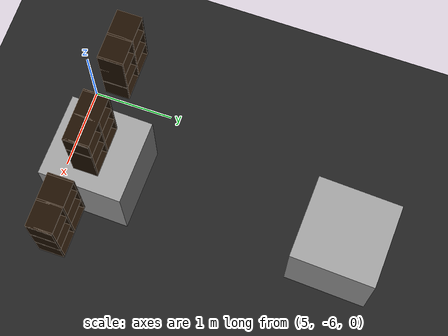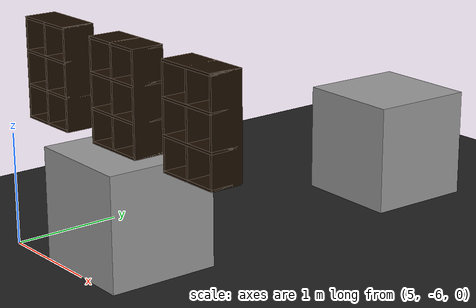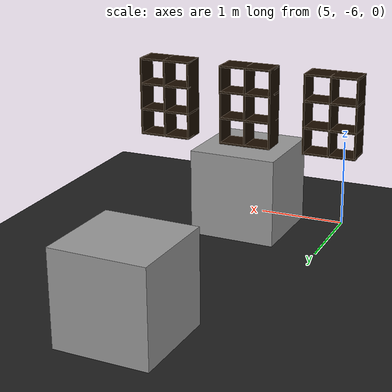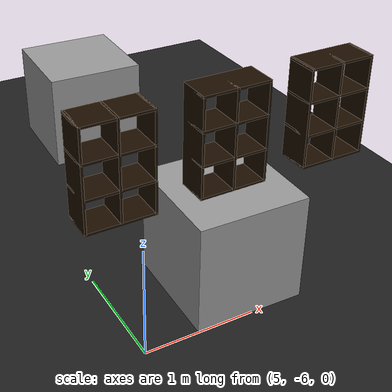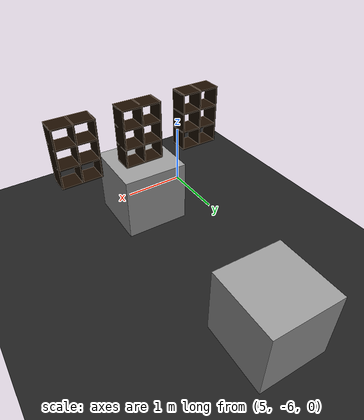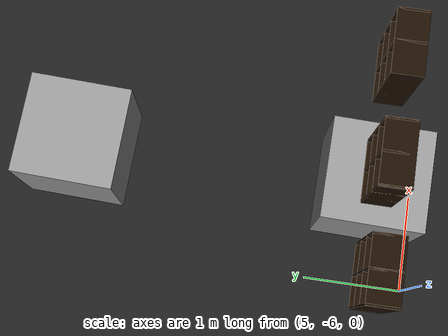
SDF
<sdf version="1.7">
 <world name="default">
  <model name="ground_plane">
   <static>1</static>
   <link name="link">
    <collision name="collision">
     <geometry><plane><normal>0 0 1</normal><size>100 100</size></plane></geometry>
     <surface><friction><ode><mu>100</mu><mu2>50</mu2></ode></friction></surface>
    </collision>
    <visual name="visual">
     <cast_shadows>0</cast_shadows>
     <geometry><plane><normal>0 0 1</normal><size>100 100</size></plane></geometry>
     <material>
      <script><uri>file://media/materials/scripts/gazebo.material</uri><name>Gazebo/BlackTransparent</name></script>
     </material>
    </visual>
   </link>
  </model>
  <model name="unit_box_27">
   <pose>5.99482 -2.50701 0.5 0 0 -0.035375</pose>
   <link name="link">
    <inertial>
     <mass>1</mass>
     <inertia>
      <ixx>0.166667</ixx>
      <ixy>0</ixy>
      <ixz>0</ixz>
      <iyy>0.166667</iyy>
      <iyz>0</iyz>
      <izz>0.166667</izz>
     </inertia>
    </inertial>
    <collision name="collision"><geometry><box><size>1 1 1</size></box></geometry></collision>
    <visual name="visual">
     <geometry><box><size>1 1 1</size></box></geometry>
     <material>
      <script><name>Gazebo/Grey</name><uri>file://media/materials/scripts/gazebo.material</uri></script>
     </material>
    </visual>
   </link>
  </model>
  <model name="unit_box_33">
   <pose>5.99752 -5.5015 0.5 0 0 -0.021423</pose>
   <link name="link">
    <inertial>
     <mass>1</mass>
     <inertia>
      <ixx>0.166667</ixx>
      <ixy>0</ixy>
      <ixz>0</ixz>
      <iyy>0.166667</iyy>
      <iyz>0</iyz>
      <izz>0.166667</izz>
     </inertia>
    </inertial>
    <collision name="collision"><geometry><box><size>1 1 1</size></box></geometry></collision>
    <visual name="visual">
     <geometry><box><size>1 1 1</size></box></geometry>
     <material>
      <script><name>Gazebo/Grey</name><uri>file://media/materials/scripts/gazebo.material</uri></script>
     </material>
    </visual>
   </link>
  </model>
  <model name="6_Cube_StorageE_clone_70">
   <link name="Wall_0">
    <pose>0 0 0.01 0 -0 0</pose>
    <inertial>
     <mass>1.6201</mass>
     <inertia><ixx>0.0119</ixx><iyy>0.0631</iyy><izz>0.0513</izz><ixy>0</ixy><ixz>0</ixz><iyz>0</iyz></inertia>
    </inertial>
    <collision name="Wall_0_Collision"><geometry><box><size>0.616 0.296 0.02</size></box></geometry></collision>
    <visual name="Wall_0_Visual">
     <geometry><box><size>0.616 0.296 0.02</size></box></geometry>
     <material>
      <script><uri>file://media/materials/scripts/gazebo.material</uri><name>Gazebo/Grey</name></script>
      <ambient>0.105882 0.0509804 0 1</ambient>
     </material>
    </visual>
   </link>
   <joint name="0_2" type="fixed">
    <pose>-0.308 0 0 0 -0 0</pose>
    <parent>Wall_2</parent>
    <child>Wall_0</child>
    <axis><xyz>1 0 0</xyz><limit><lower>-1e+16</lower><upper>1e+16</upper></limit></axis>
   </joint>
   <joint name="0_12" type="fixed">
    <parent>Wall_12</parent>
    <child>Wall_0</child>
    <axis><xyz>0 0 1</xyz><limit><lower>-1e+16</lower><upper>1e+16</upper></limit></axis>
   </joint>
   <joint name="0_4" type="fixed">
    <pose>0.308 0 0 0 -0 0</pose>
    <parent>Wall_4</parent>
    <child>Wall_0</child>
    <axis><xyz>1 0 0</xyz><limit><lower>-1e+16</lower><upper>1e+16</upper></limit></axis>
   </joint>
   <link name="Wall_10">
    <pose>0 0 0.61 0 -0 0</pose>
    <inertial>
     <mass>1.6201</mass>
     <inertia><ixx>0.0119</ixx><iyy>0.0631</iyy><izz>0.0513</izz><ixy>0</ixy><ixz>0</ixz><iyz>0</iyz></inertia>
    </inertial>
    <collision name="Wall_10_Collision"><geometry><box><size>0.616 0.296 0.02</size></box></geometry></collision>
    <visual name="Wall_10_Visual">
     <geometry><box><size>0.616 0.296 0.02</size></box></geometry>
     <material>
      <script><uri>file://media/materials/scripts/gazebo.material</uri><name>Gazebo/Grey</name></script>
      <ambient>0.105882 0.0509804 0 1</ambient>
     </material>
    </visual>
   </link>
   <joint name="10_2" type="fixed">
    <pose>-0.308 0 0 0 -0 0</pose>
    <parent>Wall_2</parent>
    <child>Wall_10</child>
    <axis><xyz>1 0 0</xyz><limit><lower>-1e+16</lower><upper>1e+16</upper></limit></axis>
   </joint>
   <joint name="10_12" type="fixed">
    <parent>Wall_12</parent>
    <child>Wall_10</child>
    <axis><xyz>0 0 1</xyz><limit><lower>-1e+16</lower><upper>1e+16</upper></limit></axis>
   </joint>
   <joint name="10_4" type="fixed">
    <pose>0.308 0 0 0 -0 0</pose>
    <parent>Wall_4</parent>
    <child>Wall_10</child>
    <axis><xyz>1 0 0</xyz><limit><lower>-1e+16</lower><upper>1e+16</upper></limit></axis>
   </joint>
   <link name="Wall_12">
    <pose>0 0 0.4575 0 -0 0</pose>
    <inertial>
     <mass>2.4065</mass>
     <inertia><ixx>0.0177</ixx><iyy>0.1855</iyy><izz>0.168</izz><ixy>0</ixy><ixz>0</ixz><iyz>0</iyz></inertia>
    </inertial>
    <collision name="Wall_12_Collision"><geometry><box><size>0.02 0.296 0.915</size></box></geometry></collision>
    <visual name="Wall_12_Visual">
     <geometry><box><size>0.02 0.296 0.915</size></box></geometry>
     <material>
      <script><uri>file://media/materials/scripts/gazebo.material</uri><name>Gazebo/Grey</name></script>
      <ambient>0.105882 0.0509804 0 1</ambient>
     </material>
    </visual>
   </link>
   <link name="Wall_2">
    <pose>-0.298 0 0.4575 0 -0 0</pose>
    <inertial>
     <mass>2.4065</mass>
     <inertia><ixx>0.0177</ixx><iyy>0.1855</iyy><izz>0.168</izz><ixy>0</ixy><ixz>0</ixz><iyz>0</iyz></inertia>
    </inertial>
    <collision name="Wall_2_Collision"><geometry><box><size>0.02 0.296 0.915</size></box></geometry></collision>
    <visual name="Wall_2_Visual">
     <geometry><box><size>0.02 0.296 0.915</size></box></geometry>
     <material>
      <script><uri>file://media/materials/scripts/gazebo.material</uri><name>Gazebo/Grey</name></script>
      <ambient>0.105882 0.0509804 0 1</ambient>
     </material>
    </visual>
   </link>
   <link name="Wall_4">
    <pose>0.298 0 0.4575 0 -0 0</pose>
    <inertial>
     <mass>2.4065</mass>
     <inertia><ixx>0.0177</ixx><iyy>0.1855</iyy><izz>0.168</izz><ixy>0</ixy><ixz>0</ixz><iyz>0</iyz></inertia>
    </inertial>
    <collision name="Wall_4_Collision"><geometry><box><size>0.02 0.296 0.915</size></box></geometry></collision>
    <visual name="Wall_4_Visual">
     <geometry><box><size>0.02 0.296 0.915</size></box></geometry>
     <material>
      <script><uri>file://media/materials/scripts/gazebo.material</uri><name>Gazebo/Grey</name></script>
      <ambient>0.105882 0.0509804 0 1</ambient>
     </material>
    </visual>
   </link>
   <link name="Wall_6">
    <pose>0 0 0.905 0 -0 0</pose>
    <inertial>
     <mass>1.6201</mass>
     <inertia><ixx>0.0119</ixx><iyy>0.0631</iyy><izz>0.0513</izz><ixy>0</ixy><ixz>0</ixz><iyz>0</iyz></inertia>
    </inertial>
    <collision name="Wall_6_Collision"><geometry><box><size>0.616 0.296 0.02</size></box></geometry></collision>
    <visual name="Wall_6_Visual">
     <geometry><box><size>0.616 0.296 0.02</size></box></geometry>
     <material>
      <script><uri>file://media/materials/scripts/gazebo.material</uri><name>Gazebo/Grey</name></script>
      <ambient>0.105882 0.0509804 0 1</ambient>
     </material>
    </visual>
   </link>
   <joint name="6_2" type="fixed">
    <pose>-0.308 0 0 0 -0 0</pose>
    <parent>Wall_2</parent>
    <child>Wall_6</child>
    <axis><xyz>2 0 0</xyz><limit><lower>-1e+16</lower><upper>1e+16</upper></limit></axis>
   </joint>
   <joint name="6_12" type="fixed">
    <parent>Wall_12</parent>
    <child>Wall_6</child>
    <axis><xyz>0 0 1</xyz><limit><lower>-1e+16</lower><upper>1e+16</upper></limit></axis>
   </joint>
   <joint name="6_4" type="fixed">
    <pose>0.308 0 0 0 -0 0</pose>
    <parent>Wall_4</parent>
    <child>Wall_6</child>
    <axis><xyz>1 0 0</xyz><limit><lower>-1e+16</lower><upper>1e+16</upper></limit></axis>
   </joint>
   <link name="Wall_8">
    <pose>0 0 0.305 0 -0 0</pose>
    <inertial>
     <mass>1.6201</mass>
     <inertia><ixx>0.0119</ixx><iyy>0.0631</iyy><izz>0.0513</izz><ixy>0</ixy><ixz>0</ixz><iyz>0</iyz></inertia>
    </inertial>
    <collision name="Wall_8_Collision"><geometry><box><size>0.616 0.296 0.02</size></box></geometry></collision>
    <visual name="Wall_8_Visual">
     <geometry><box><size>0.616 0.296 0.02</size></box></geometry>
     <material>
      <script><uri>file://media/materials/scripts/gazebo.material</uri><name>Gazebo/Grey</name></script>
      <ambient>0.105882 0.0509804 0 1</ambient>
     </material>
    </visual>
   </link>
   <joint name="8_2" type="fixed">
    <pose>-0.308 0 0 0 -0 0</pose>
    <parent>Wall_2</parent>
    <child>Wall_8</child>
    <axis><xyz>1 0 0</xyz><limit><lower>-1e+16</lower><upper>1e+16</upper></limit></axis>
   </joint>
   <joint name="8_12" type="fixed">
    <parent>Wall_12</parent>
    <child>Wall_8</child>
    <axis><xyz>0 0 1</xyz><limit><lower>-1e+16</lower><upper>1e+16</upper></limit></axis>
   </joint>
   <joint name="8_4" type="fixed">
    <pose>0.308 0 0 0 -0 0</pose>
    <parent>Wall_4</parent>
    <child>Wall_8</child>
    <axis><xyz>1 0 0</xyz><limit><lower>-1e+16</lower><upper>1e+16</upper></limit></axis>
   </joint>
   <static>1</static>
   <pose>5 -5.5 1.01 0 -0 0</pose>
  </model>
  <model name="6_Cube_StorageE_clone_71">
   <link name="Wall_0">
    <pose>0 0 0.01 0 -0 0</pose>
    <inertial>
     <mass>1.6201</mass>
     <inertia><ixx>0.0119</ixx><iyy>0.0631</iyy><izz>0.0513</izz><ixy>0</ixy><ixz>0</ixz><iyz>0</iyz></inertia>
    </inertial>
    <collision name="Wall_0_Collision"><geometry><box><size>0.616 0.296 0.02</size></box></geometry></collision>
    <visual name="Wall_0_Visual">
     <geometry><box><size>0.616 0.296 0.02</size></box></geometry>
     <material>
      <script><uri>file://media/materials/scripts/gazebo.material</uri><name>Gazebo/Grey</name></script>
      <ambient>0.105882 0.0509804 0 1</ambient>
     </material>
    </visual>
   </link>
   <joint name="0_2" type="fixed">
    <pose>-0.308 0 0 0 -0 0</pose>
    <parent>Wall_2</parent>
    <child>Wall_0</child>
    <axis><xyz>1 0 0</xyz><limit><lower>-1e+16</lower><upper>1e+16</upper></limit></axis>
   </joint>
   <joint name="0_12" type="fixed">
    <parent>Wall_12</parent>
    <child>Wall_0</child>
    <axis><xyz>0 0 1</xyz><limit><lower>-1e+16</lower><upper>1e+16</upper></limit></axis>
   </joint>
   <joint name="0_4" type="fixed">
    <pose>0.308 0 0 0 -0 0</pose>
    <parent>Wall_4</parent>
    <child>Wall_0</child>
    <axis><xyz>1 0 0</xyz><limit><lower>-1e+16</lower><upper>1e+16</upper></limit></axis>
   </joint>
   <link name="Wall_10">
    <pose>0 0 0.61 0 -0 0</pose>
    <inertial>
     <mass>1.6201</mass>
     <inertia><ixx>0.0119</ixx><iyy>0.0631</iyy><izz>0.0513</izz><ixy>0</ixy><ixz>0</ixz><iyz>0</iyz></inertia>
    </inertial>
    <collision name="Wall_10_Collision"><geometry><box><size>0.616 0.296 0.02</size></box></geometry></collision>
    <visual name="Wall_10_Visual">
     <geometry><box><size>0.616 0.296 0.02</size></box></geometry>
     <material>
      <script><uri>file://media/materials/scripts/gazebo.material</uri><name>Gazebo/Grey</name></script>
      <ambient>0.105882 0.0509804 0 1</ambient>
     </material>
    </visual>
   </link>
   <joint name="10_2" type="fixed">
    <pose>-0.308 0 0 0 -0 0</pose>
    <parent>Wall_2</parent>
    <child>Wall_10</child>
    <axis><xyz>1 0 0</xyz><limit><lower>-1e+16</lower><upper>1e+16</upper></limit></axis>
   </joint>
   <joint name="10_12" type="fixed">
    <parent>Wall_12</parent>
    <child>Wall_10</child>
    <axis><xyz>0 0 1</xyz><limit><lower>-1e+16</lower><upper>1e+16</upper></limit></axis>
   </joint>
   <joint name="10_4" type="fixed">
    <pose>0.308 0 0 0 -0 0</pose>
    <parent>Wall_4</parent>
    <child>Wall_10</child>
    <axis><xyz>1 0 0</xyz><limit><lower>-1e+16</lower><upper>1e+16</upper></limit></axis>
   </joint>
   <link name="Wall_12">
    <pose>0 0 0.4575 0 -0 0</pose>
    <inertial>
     <mass>2.4065</mass>
     <inertia><ixx>0.0177</ixx><iyy>0.1855</iyy><izz>0.168</izz><ixy>0</ixy><ixz>0</ixz><iyz>0</iyz></inertia>
    </inertial>
    <collision name="Wall_12_Collision"><geometry><box><size>0.02 0.296 0.915</size></box></geometry></collision>
    <visual name="Wall_12_Visual">
     <geometry><box><size>0.02 0.296 0.915</size></box></geometry>
     <material>
      <script><uri>file://media/materials/scripts/gazebo.material</uri><name>Gazebo/Grey</name></script>
      <ambient>0.105882 0.0509804 0 1</ambient>
     </material>
    </visual>
   </link>
   <link name="Wall_2">
    <pose>-0.298 0 0.4575 0 -0 0</pose>
    <inertial>
     <mass>2.4065</mass>
     <inertia><ixx>0.0177</ixx><iyy>0.1855</iyy><izz>0.168</izz><ixy>0</ixy><ixz>0</ixz><iyz>0</iyz></inertia>
    </inertial>
    <collision name="Wall_2_Collision"><geometry><box><size>0.02 0.296 0.915</size></box></geometry></collision>
    <visual name="Wall_2_Visual">
     <geometry><box><size>0.02 0.296 0.915</size></box></geometry>
     <material>
      <script><uri>file://media/materials/scripts/gazebo.material</uri><name>Gazebo/Grey</name></script>
      <ambient>0.105882 0.0509804 0 1</ambient>
     </material>
    </visual>
   </link>
   <link name="Wall_4">
    <pose>0.298 0 0.4575 0 -0 0</pose>
    <inertial>
     <mass>2.4065</mass>
     <inertia><ixx>0.0177</ixx><iyy>0.1855</iyy><izz>0.168</izz><ixy>0</ixy><ixz>0</ixz><iyz>0</iyz></inertia>
    </inertial>
    <collision name="Wall_4_Collision"><geometry><box><size>0.02 0.296 0.915</size></box></geometry></collision>
    <visual name="Wall_4_Visual">
     <geometry><box><size>0.02 0.296 0.915</size></box></geometry>
     <material>
      <script><uri>file://media/materials/scripts/gazebo.material</uri><name>Gazebo/Grey</name></script>
      <ambient>0.105882 0.0509804 0 1</ambient>
     </material>
    </visual>
   </link>
   <link name="Wall_6">
    <pose>0 0 0.905 0 -0 0</pose>
    <inertial>
     <mass>1.6201</mass>
     <inertia><ixx>0.0119</ixx><iyy>0.0631</iyy><izz>0.0513</izz><ixy>0</ixy><ixz>0</ixz><iyz>0</iyz></inertia>
    </inertial>
    <collision name="Wall_6_Collision"><geometry><box><size>0.616 0.296 0.02</size></box></geometry></collision>
    <visual name="Wall_6_Visual">
     <geometry><box><size>0.616 0.296 0.02</size></box></geometry>
     <material>
      <script><uri>file://media/materials/scripts/gazebo.material</uri><name>Gazebo/Grey</name></script>
      <ambient>0.105882 0.0509804 0 1</ambient>
     </material>
    </visual>
   </link>
   <joint name="6_2" type="fixed">
    <pose>-0.308 0 0 0 -0 0</pose>
    <parent>Wall_2</parent>
    <child>Wall_6</child>
    <axis><xyz>2 0 0</xyz><limit><lower>-1e+16</lower><upper>1e+16</upper></limit></axis>
   </joint>
   <joint name="6_12" type="fixed">
    <parent>Wall_12</parent>
    <child>Wall_6</child>
    <axis><xyz>0 0 1</xyz><limit><lower>-1e+16</lower><upper>1e+16</upper></limit></axis>
   </joint>
   <joint name="6_4" type="fixed">
    <pose>0.308 0 0 0 -0 0</pose>
    <parent>Wall_4</parent>
    <child>Wall_6</child>
    <axis><xyz>1 0 0</xyz><limit><lower>-1e+16</lower><upper>1e+16</upper></limit></axis>
   </joint>
   <link name="Wall_8">
    <pose>0 0 0.305 0 -0 0</pose>
    <inertial>
     <mass>1.6201</mass>
     <inertia><ixx>0.0119</ixx><iyy>0.0631</iyy><izz>0.0513</izz><ixy>0</ixy><ixz>0</ixz><iyz>0</iyz></inertia>
    </inertial>
    <collision name="Wall_8_Collision"><geometry><box><size>0.616 0.296 0.02</size></box></geometry></collision>
    <visual name="Wall_8_Visual">
     <geometry><box><size>0.616 0.296 0.02</size></box></geometry>
     <material>
      <script><uri>file://media/materials/scripts/gazebo.material</uri><name>Gazebo/Grey</name></script>
      <ambient>0.105882 0.0509804 0 1</ambient>
     </material>
    </visual>
   </link>
   <joint name="8_2" type="fixed">
    <pose>-0.308 0 0 0 -0 0</pose>
    <parent>Wall_2</parent>
    <child>Wall_8</child>
    <axis><xyz>1 0 0</xyz><limit><lower>-1e+16</lower><upper>1e+16</upper></limit></axis>
   </joint>
   <joint name="8_12" type="fixed">
    <parent>Wall_12</parent>
    <child>Wall_8</child>
    <axis><xyz>0 0 1</xyz><limit><lower>-1e+16</lower><upper>1e+16</upper></limit></axis>
   </joint>
   <joint name="8_4" type="fixed">
    <pose>0.308 0 0 0 -0 0</pose>
    <parent>Wall_4</parent>
    <child>Wall_8</child>
    <axis><xyz>1 0 0</xyz><limit><lower>-1e+16</lower><upper>1e+16</upper></limit></axis>
   </joint>
   <static>1</static>
   <pose>6 -5.5 1.01 0 -0 0</pose>
  </model>
  <model name="6_Cube_StorageE_clone_72">
   <link name="Wall_0">
    <pose>0 0 0.01 0 -0 0</pose>
    <inertial>
     <mass>1.6201</mass>
     <inertia><ixx>0.0119</ixx><iyy>0.0631</iyy><izz>0.0513</izz><ixy>0</ixy><ixz>0</ixz><iyz>0</iyz></inertia>
    </inertial>
    <collision name="Wall_0_Collision"><geometry><box><size>0.616 0.296 0.02</size></box></geometry></collision>
    <visual name="Wall_0_Visual">
     <geometry><box><size>0.616 0.296 0.02</size></box></geometry>
     <material>
      <script><uri>file://media/materials/scripts/gazebo.material</uri><name>Gazebo/Grey</name></script>
      <ambient>0.105882 0.0509804 0 1</ambient>
     </material>
    </visual>
   </link>
   <joint name="0_2" type="fixed">
    <pose>-0.308 0 0 0 -0 0</pose>
    <parent>Wall_2</parent>
    <child>Wall_0</child>
    <axis><xyz>1 0 0</xyz><limit><lower>-1e+16</lower><upper>1e+16</upper></limit></axis>
   </joint>
   <joint name="0_12" type="fixed">
    <parent>Wall_12</parent>
    <child>Wall_0</child>
    <axis><xyz>0 0 1</xyz><limit><lower>-1e+16</lower><upper>1e+16</upper></limit></axis>
   </joint>
   <joint name="0_4" type="fixed">
    <pose>0.308 0 0 0 -0 0</pose>
    <parent>Wall_4</parent>
    <child>Wall_0</child>
    <axis><xyz>1 0 0</xyz><limit><lower>-1e+16</lower><upper>1e+16</upper></limit></axis>
   </joint>
   <link name="Wall_10">
    <pose>0 0 0.61 0 -0 0</pose>
    <inertial>
     <mass>1.6201</mass>
     <inertia><ixx>0.0119</ixx><iyy>0.0631</iyy><izz>0.0513</izz><ixy>0</ixy><ixz>0</ixz><iyz>0</iyz></inertia>
    </inertial>
    <collision name="Wall_10_Collision"><geometry><box><size>0.616 0.296 0.02</size></box></geometry></collision>
    <visual name="Wall_10_Visual">
     <geometry><box><size>0.616 0.296 0.02</size></box></geometry>
     <material>
      <script><uri>file://media/materials/scripts/gazebo.material</uri><name>Gazebo/Grey</name></script>
      <ambient>0.105882 0.0509804 0 1</ambient>
     </material>
    </visual>
   </link>
   <joint name="10_2" type="fixed">
    <pose>-0.308 0 0 0 -0 0</pose>
    <parent>Wall_2</parent>
    <child>Wall_10</child>
    <axis><xyz>1 0 0</xyz><limit><lower>-1e+16</lower><upper>1e+16</upper></limit></axis>
   </joint>
   <joint name="10_12" type="fixed">
    <parent>Wall_12</parent>
    <child>Wall_10</child>
    <axis><xyz>0 0 1</xyz><limit><lower>-1e+16</lower><upper>1e+16</upper></limit></axis>
   </joint>
   <joint name="10_4" type="fixed">
    <pose>0.308 0 0 0 -0 0</pose>
    <parent>Wall_4</parent>
    <child>Wall_10</child>
    <axis><xyz>1 0 0</xyz><limit><lower>-1e+16</lower><upper>1e+16</upper></limit></axis>
   </joint>
   <link name="Wall_12">
    <pose>0 0 0.4575 0 -0 0</pose>
    <inertial>
     <mass>2.4065</mass>
     <inertia><ixx>0.0177</ixx><iyy>0.1855</iyy><izz>0.168</izz><ixy>0</ixy><ixz>0</ixz><iyz>0</iyz></inertia>
    </inertial>
    <collision name="Wall_12_Collision"><geometry><box><size>0.02 0.296 0.915</size></box></geometry></collision>
    <visual name="Wall_12_Visual">
     <geometry><box><size>0.02 0.296 0.915</size></box></geometry>
     <material>
      <script><uri>file://media/materials/scripts/gazebo.material</uri><name>Gazebo/Grey</name></script>
      <ambient>0.105882 0.0509804 0 1</ambient>
     </material>
    </visual>
   </link>
   <link name="Wall_2">
    <pose>-0.298 0 0.4575 0 -0 0</pose>
    <inertial>
     <mass>2.4065</mass>
     <inertia><ixx>0.0177</ixx><iyy>0.1855</iyy><izz>0.168</izz><ixy>0</ixy><ixz>0</ixz><iyz>0</iyz></inertia>
    </inertial>
    <collision name="Wall_2_Collision"><geometry><box><size>0.02 0.296 0.915</size></box></geometry></collision>
    <visual name="Wall_2_Visual">
     <geometry><box><size>0.02 0.296 0.915</size></box></geometry>
     <material>
      <script><uri>file://media/materials/scripts/gazebo.material</uri><name>Gazebo/Grey</name></script>
      <ambient>0.105882 0.0509804 0 1</ambient>
     </material>
    </visual>
   </link>
   <link name="Wall_4">
    <pose>0.298 0 0.4575 0 -0 0</pose>
    <inertial>
     <mass>2.4065</mass>
     <inertia><ixx>0.0177</ixx><iyy>0.1855</iyy><izz>0.168</izz><ixy>0</ixy><ixz>0</ixz><iyz>0</iyz></inertia>
    </inertial>
    <collision name="Wall_4_Collision"><geometry><box><size>0.02 0.296 0.915</size></box></geometry></collision>
    <visual name="Wall_4_Visual">
     <geometry><box><size>0.02 0.296 0.915</size></box></geometry>
     <material>
      <script><uri>file://media/materials/scripts/gazebo.material</uri><name>Gazebo/Grey</name></script>
      <ambient>0.105882 0.0509804 0 1</ambient>
     </material>
    </visual>
   </link>
   <link name="Wall_6">
    <pose>0 0 0.905 0 -0 0</pose>
    <inertial>
     <mass>1.6201</mass>
     <inertia><ixx>0.0119</ixx><iyy>0.0631</iyy><izz>0.0513</izz><ixy>0</ixy><ixz>0</ixz><iyz>0</iyz></inertia>
    </inertial>
    <collision name="Wall_6_Collision"><geometry><box><size>0.616 0.296 0.02</size></box></geometry></collision>
    <visual name="Wall_6_Visual">
     <geometry><box><size>0.616 0.296 0.02</size></box></geometry>
     <material>
      <script><uri>file://media/materials/scripts/gazebo.material</uri><name>Gazebo/Grey</name></script>
      <ambient>0.105882 0.0509804 0 1</ambient>
     </material>
    </visual>
   </link>
   <joint name="6_2" type="fixed">
    <pose>-0.308 0 0 0 -0 0</pose>
    <parent>Wall_2</parent>
    <child>Wall_6</child>
    <axis><xyz>2 0 0</xyz><limit><lower>-1e+16</lower><upper>1e+16</upper></limit></axis>
   </joint>
   <joint name="6_12" type="fixed">
    <parent>Wall_12</parent>
    <child>Wall_6</child>
    <axis><xyz>0 0 1</xyz><limit><lower>-1e+16</lower><upper>1e+16</upper></limit></axis>
   </joint>
   <joint name="6_4" type="fixed">
    <pose>0.308 0 0 0 -0 0</pose>
    <parent>Wall_4</parent>
    <child>Wall_6</child>
    <axis><xyz>1 0 0</xyz><limit><lower>-1e+16</lower><upper>1e+16</upper></limit></axis>
   </joint>
   <link name="Wall_8">
    <pose>0 0 0.305 0 -0 0</pose>
    <inertial>
     <mass>1.6201</mass>
     <inertia><ixx>0.0119</ixx><iyy>0.0631</iyy><izz>0.0513</izz><ixy>0</ixy><ixz>0</ixz><iyz>0</iyz></inertia>
    </inertial>
    <collision name="Wall_8_Collision"><geometry><box><size>0.616 0.296 0.02</size></box></geometry></collision>
    <visual name="Wall_8_Visual">
     <geometry><box><size>0.616 0.296 0.02</size></box></geometry>
     <material>
      <script><uri>file://media/materials/scripts/gazebo.material</uri><name>Gazebo/Grey</name></script>
      <ambient>0.105882 0.0509804 0 1</ambient>
     </material>
    </visual>
   </link>
   <joint name="8_2" type="fixed">
    <pose>-0.308 0 0 0 -0 0</pose>
    <parent>Wall_2</parent>
    <child>Wall_8</child>
    <axis><xyz>1 0 0</xyz><limit><lower>-1e+16</lower><upper>1e+16</upper></limit></axis>
   </joint>
   <joint name="8_12" type="fixed">
    <parent>Wall_12</parent>
    <child>Wall_8</child>
    <axis><xyz>0 0 1</xyz><limit><lower>-1e+16</lower><upper>1e+16</upper></limit></axis>
   </joint>
   <joint name="8_4" type="fixed">
    <pose>0.308 0 0 0 -0 0</pose>
    <parent>Wall_4</parent>
    <child>Wall_8</child>
    <axis><xyz>1 0 0</xyz><limit><lower>-1e+16</lower><upper>1e+16</upper></limit></axis>
   </joint>
   <static>1</static>
   <pose>7 -5.5 1.01 0 -0 0</pose>
  </model>
 </world>
</sdf>
